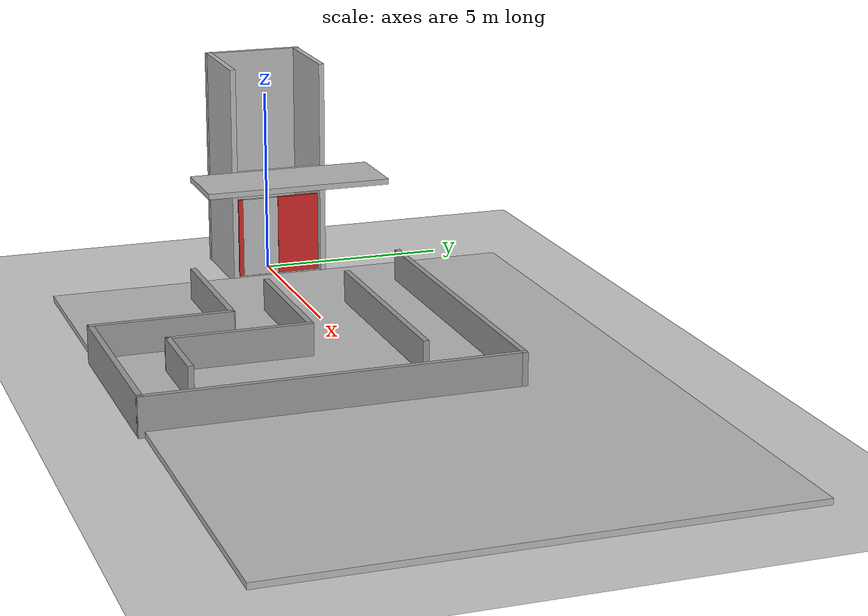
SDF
<sdf version="1.6">
 <world name="default">
  <light name="sun" type="directional">
   <pose>0 0 10 0 -0 0</pose>
   <diffuse>0.8 0.8 0.8 1</diffuse>
   <specular>0.2 0.2 0.2 1</specular>
   <attenuation>
    <range>1000</range>
    <constant>0.9</constant>
    <linear>0.01</linear>
    <quadratic>0.001</quadratic>
   </attenuation>
   <direction>-0.5 0.1 -0.9</direction>
  </light>
  <model name="ground_plane">
   <static>1</static>
   <link name="link">
    <collision name="collision">
     <geometry><plane><normal>0 0 1</normal><size>100 100</size></plane></geometry>
     <surface>
      <contact><collide_bitmask>65535</collide_bitmask></contact>
      <friction><ode><mu>100</mu><mu2>50</mu2></ode></friction>
     </surface>
    </collision>
    <visual name="visual">
     <cast_shadows>0</cast_shadows>
     <geometry><plane><normal>0 0 1</normal><size>100 100</size></plane></geometry>
     <material>
      <script><uri>file://media/materials/scripts/gazebo.material</uri><name>Gazebo/Grey</name></script>
     </material>
    </visual>
   </link>
  </model>
  <plugin name="elevator_event_plugin" filename="libSimEventsPlugin.so">
   <region><name>region1</name><volume><min>1.5 -1 0</min><max>2.5 1 1</max></volume></region>
   <region><name>region2</name><volume><min>1.5 -1 3</min><max>2.5 1 4</max></volume></region>
   <event>
    <name>region1_event</name>
    <type>occupied</type>
    <region>region1</region>
    <topic>~/elevator</topic>
    <msg_data>0</msg_data>
   </event>
   <event>
    <name>region2_event</name>
    <type>occupied</type>
    <region>region2</region>
    <topic>~/elevator</topic>
    <msg_data>1</msg_data>
   </event>
  </plugin>
  <model name="elevator">
   <pose>-0 0 0.075 -0 -0 -0</pose>
   <link name="link">
    <inertial>
     <mass>800</mass>
     <inertia><ixx>1</ixx><ixy>0</ixy><ixz>0</ixz><iyy>1</iyy><iyz>0</iyz><izz>1</izz></inertia>
    </inertial>
    <collision name="floor_collision"><geometry><box><size>2.25 2.25 0.15</size></box></geometry></collision>
    <visual name="floor_visual"><geometry><box><size>2.25 2.25 0.15</size></box></geometry></visual>
    <collision name="wall1_collision">
     <pose>1.0745 0.5725 1.125 0 -0 0</pose>
     <geometry><box><size>0.1 1.15 2.25</size></box></geometry>
    </collision>
    <visual name="wall1_visual">
     <pose>1.0745 0.5725 1.125 0 -0 0</pose>
     <geometry><box><size>0.1 1.15 2.25</size></box></geometry>
     <material><script><name>Gazebo/Red</name><uri>__default__</uri></script></material>
    </visual>
    <collision name="wall2_collision">
     <pose>1.0745 -1.0625 1.125 0 -0 0</pose>
     <geometry><box><size>0.1 0.125 2.25</size></box></geometry>
    </collision>
    <visual name="wall2_visual">
     <pose>1.0745 -1.0625 1.125 0 -0 0</pose>
     <geometry><box><size>0.1 0.125 2.25</size></box></geometry>
     <material><script><name>Gazebo/Red</name><uri>__default__</uri></script></material>
    </visual>
   </link>
   <link name="door">
    <pose>1.0745 -0.5 1.125 0 -0 0</pose>
    <collision name="collision"><geometry><box><size>0.08 1 2.25</size></box></geometry></collision>
    <visual name="visual"><geometry><box><size>0.08 1 2.25</size></box></geometry></visual>
    <inertial>
     <inertia><ixx>1</ixx><ixy>0</ixy><ixz>0</ixz><iyy>1</iyy><iyz>0</iyz><izz>1</izz></inertia>
     <mass>1</mass>
    </inertial>
   </link>
   <joint name="door" type="prismatic">
    <parent>link</parent>
    <child>door</child>
    <axis>
     <xyz>0 1 0</xyz>
     <limit><lower>0</lower><upper>1</upper><effort>10</effort></limit>
     <dynamics>
      <damping>2</damping>
      <spring_reference>0</spring_reference>
      <spring_stiffness>0</spring_stiffness>
     </dynamics>
     <use_parent_model_frame>0</use_parent_model_frame>
    </axis>
   </joint>
   <joint name="lift" type="prismatic">
    <parent>world</parent>
    <child>link</child>
    <axis>
     <xyz>0 0 1</xyz>
     <limit><lower>0</lower><upper>10</upper><effort>100000</effort></limit>
     <dynamics>
      <damping>50</damping>
      <spring_reference>0</spring_reference>
      <spring_stiffness>0</spring_stiffness>
     </dynamics>
     <use_parent_model_frame>0</use_parent_model_frame>
    </axis>
    <physics>
     <ode><implicit_spring_damper>1</implicit_spring_damper><limit><cfm>0</cfm><erp>0.2</erp></limit></ode>
    </physics>
   </joint>
   <plugin name="elevator_plugin" filename="libElevatorPlugin.so">
    <lift_joint>elevator::lift</lift_joint>
    <door_joint>elevator::door</door_joint>
    <floor_height>3.075</floor_height>
    <door_wait_time>10</door_wait_time>
    <topic>~/elevator</topic>
   </plugin>
  </model>
  <model name="elevator_shaft">
   <static>1</static>
   <link name="link">
    <collision name="shaft_wall1_collision">
     <pose>0 1.25 3 0 -0 0</pose>
     <geometry><box><size>2.5 0.15 6</size></box></geometry>
    </collision>
    <visual name="shaft_wall1_visual">
     <pose>0 1.25 3 0 -0 0</pose>
     <geometry><box><size>2.5 0.15 6</size></box></geometry>
    </visual>
    <collision name="shaft_wall2_collision">
     <pose>0 -1.25 3 0 -0 0</pose>
     <geometry><box><size>2.5 0.15 6</size></box></geometry>
    </collision>
    <visual name="shaft_wall2_visual">
     <pose>0 -1.25 3 0 -0 0</pose>
     <geometry><box><size>2.5 0.15 6</size></box></geometry>
    </visual>
    <collision name="shaft_wall3_collision">
     <pose>-1.25 0 3 0 -0 0</pose>
     <geometry><box><size>0.15 2.7 6</size></box></geometry>
    </collision>
    <visual name="shaft_wall3_visual">
     <pose>-1.25 0 3 0 -0 0</pose>
     <geometry><box><size>0.15 2.7 6</size></box></geometry>
    </visual>
    <collision name="floor0_collision">
     <pose>1.19 0 0.075 0 -0 0</pose>
     <geometry><box><size>0.12 2.5 0.15</size></box></geometry>
    </collision>
    <visual name="floor0_visual">
     <pose>1.19 0 0.075 0 -0 0</pose>
     <geometry><box><size>0.12 2.5 0.15</size></box></geometry>
    </visual>
    <collision name="floor1_collision">
     <pose>1.19 0 3.075 0 -0 0</pose>
     <geometry><box><size>0.12 2.5 0.15</size></box></geometry>
    </collision>
    <visual name="floor1_visual">
     <pose>1.19 0 3.075 0 -0 0</pose>
     <geometry><box><size>0.12 2.5 0.15</size></box></geometry>
    </visual>
   </link>
  </model>
  <model name="floor1">
   <pose>2.25 0 3.075 0 -0 0</pose>
   <static>1</static>
   <link name="link">
    <collision name="floor_collision"><geometry><box><size>2 5 0.15</size></box></geometry></collision>
    <visual name="floor_visual"><geometry><box><size>2 5 0.15</size></box></geometry></visual>
   </link>
  </model>
  <gravity>0 0 -9.8</gravity>
  <magnetic_field>6e-06 2.3e-05 -4.2e-05</magnetic_field>
  <atmosphere type="adiabatic"/>
  <physics name="default_physics" default="0" type="ode">
   <max_step_size>0.001</max_step_size>
   <real_time_factor>1</real_time_factor>
   <real_time_update_rate>1000</real_time_update_rate>
  </physics>
  <scene><ambient>0.4 0.4 0.4 1</ambient><background>0.7 0.7 0.7 1</background><shadows>1</shadows></scene>
  <spherical_coordinates>
   <surface_model>EARTH_WGS84</surface_model>
   <latitude_deg>0</latitude_deg>
   <longitude_deg>0</longitude_deg>
   <elevation>0</elevation>
   <heading_deg>0</heading_deg>
  </spherical_coordinates>
  <model name="Circuit_ql_2_deleted_three_walls">
   <link name="Wall_1">
    <pose>-2.675 -1.075 0 0 -0 0</pose>
    <visual name="Wall_1_Visual">
     <pose>0 0 0.5 0 -0 0</pose>
     <geometry><box><size>4 0.15 1</size></box></geometry>
     <material>
      <script><uri>file://media/materials/scripts/gazebo.material</uri><name>Gazebo/Grey</name></script>
      <ambient>1 1 1 1</ambient>
      <shader type="pixel"/>
     </material>
    </visual>
    <collision name="Wall_1_Collision">
     <pose>0 0 0.5 0 -0 0</pose>
     <geometry><box><size>4 0.15 1</size></box></geometry>
     <surface>
      <friction>
       <ode><mu>1</mu><mu2>1</mu2><fdir1>0 0 0</fdir1><slip1>0</slip1><slip2>0</slip2></ode>
       <torsional>
        <coefficient>1</coefficient>
        <patch_radius>0</patch_radius>
        <surface_radius>0</surface_radius>
        <use_patch_radius>1</use_patch_radius>
        <ode><slip>0</slip></ode>
       </torsional>
      </friction>
      <bounce><restitution_coefficient>0</restitution_coefficient><threshold>1e+06</threshold></bounce>
      <contact>
       <collide_without_contact>0</collide_without_contact>
       <collide_without_contact_bitmask>1</collide_without_contact_bitmask>
       <collide_bitmask>1</collide_bitmask>
       <ode>
        <soft_cfm>0</soft_cfm>
        <soft_erp>0.2</soft_erp>
        <kp>1e+13</kp>
        <kd>1</kd>
        <max_vel>0.01</max_vel>
        <min_depth>0</min_depth>
       </ode>
       <bullet>
        <split_impulse>1</split_impulse>
        <split_impulse_penetration_threshold>-0.01</split_impulse_penetration_threshold>
        <soft_cfm>0</soft_cfm>
        <soft_erp>0.2</soft_erp>
        <kp>1e+13</kp>
        <kd>1</kd>
       </bullet>
      </contact>
     </surface>
    </collision>
   </link>
   <link name="Wall_12">
    <pose>-1.111 0.509 0 0 -0 0</pose>
    <visual name="Wall_12_Visual">
     <pose>0 0 0.5 0 -0 0</pose>
     <geometry><box><size>4 0.15 1</size></box></geometry>
     <material>
      <script><uri>file://media/materials/scripts/gazebo.material</uri><name>Gazebo/Grey</name></script>
      <ambient>1 1 1 1</ambient>
      <shader type="pixel"/>
     </material>
    </visual>
    <collision name="Wall_12_Collision">
     <pose>0 0 0.5 0 -0 0</pose>
     <geometry><box><size>4 0.15 1</size></box></geometry>
     <surface>
      <friction>
       <ode><mu>1</mu><mu2>1</mu2><fdir1>0 0 0</fdir1><slip1>0</slip1><slip2>0</slip2></ode>
       <torsional>
        <coefficient>1</coefficient>
        <patch_radius>0</patch_radius>
        <surface_radius>0</surface_radius>
        <use_patch_radius>1</use_patch_radius>
        <ode><slip>0</slip></ode>
       </torsional>
      </friction>
      <bounce><restitution_coefficient>0</restitution_coefficient><threshold>1e+06</threshold></bounce>
      <contact>
       <collide_without_contact>0</collide_without_contact>
       <collide_without_contact_bitmask>1</collide_without_contact_bitmask>
       <collide_bitmask>1</collide_bitmask>
       <ode>
        <soft_cfm>0</soft_cfm>
        <soft_erp>0.2</soft_erp>
        <kp>1e+13</kp>
        <kd>1</kd>
        <max_vel>0.01</max_vel>
        <min_depth>0</min_depth>
       </ode>
       <bullet>
        <split_impulse>1</split_impulse>
        <split_impulse_penetration_threshold>-0.01</split_impulse_penetration_threshold>
        <soft_cfm>0</soft_cfm>
        <soft_erp>0.2</soft_erp>
        <kp>1e+13</kp>
        <kd>1</kd>
       </bullet>
      </contact>
     </surface>
    </collision>
   </link>
   <link name="Wall_13">
    <pose>0.814 -1.291 0 0 0 -1.5708</pose>
    <visual name="Wall_13_Visual">
     <pose>0 0 0.5 0 -0 0</pose>
     <geometry><box><size>3.75 0.15 1</size></box></geometry>
     <material>
      <script><uri>file://media/materials/scripts/gazebo.material</uri><name>Gazebo/Grey</name></script>
      <ambient>1 1 1 1</ambient>
      <shader type="pixel"/>
     </material>
    </visual>
    <collision name="Wall_13_Collision">
     <pose>0 0 0.5 0 -0 0</pose>
     <geometry><box><size>3.75 0.15 1</size></box></geometry>
     <surface>
      <friction>
       <ode><mu>1</mu><mu2>1</mu2><fdir1>0 0 0</fdir1><slip1>0</slip1><slip2>0</slip2></ode>
       <torsional>
        <coefficient>1</coefficient>
        <patch_radius>0</patch_radius>
        <surface_radius>0</surface_radius>
        <use_patch_radius>1</use_patch_radius>
        <ode><slip>0</slip></ode>
       </torsional>
      </friction>
      <bounce><restitution_coefficient>0</restitution_coefficient><threshold>1e+06</threshold></bounce>
      <contact>
       <collide_without_contact>0</collide_without_contact>
       <collide_without_contact_bitmask>1</collide_without_contact_bitmask>
       <collide_bitmask>1</collide_bitmask>
       <ode>
        <soft_cfm>0</soft_cfm>
        <soft_erp>0.2</soft_erp>
        <kp>1e+13</kp>
        <kd>1</kd>
        <max_vel>0.01</max_vel>
        <min_depth>0</min_depth>
       </ode>
       <bullet>
        <split_impulse>1</split_impulse>
        <split_impulse_penetration_threshold>-0.01</split_impulse_penetration_threshold>
        <soft_cfm>0</soft_cfm>
        <soft_erp>0.2</soft_erp>
        <kp>1e+13</kp>
        <kd>1</kd>
       </bullet>
      </contact>
     </surface>
    </collision>
   </link>
   <link name="Wall_14">
    <pose>1.9 -3.091 0 0 -0 0</pose>
    <visual name="Wall_14_Visual">
     <pose>0 0 0.5 0 -0 0</pose>
     <geometry><box><size>2.25 0.15 1</size></box></geometry>
     <material>
      <script><uri>file://media/materials/scripts/gazebo.material</uri><name>Gazebo/Grey</name></script>
      <ambient>1 1 1 1</ambient>
      <shader type="pixel"/>
     </material>
    </visual>
    <collision name="Wall_14_Collision">
     <pose>0 0 0.5 0 -0 0</pose>
     <geometry><box><size>2.25 0.15 1</size></box></geometry>
     <surface>
      <friction>
       <ode><mu>1</mu><mu2>1</mu2><fdir1>0 0 0</fdir1><slip1>0</slip1><slip2>0</slip2></ode>
       <torsional>
        <coefficient>1</coefficient>
        <patch_radius>0</patch_radius>
        <surface_radius>0</surface_radius>
        <use_patch_radius>1</use_patch_radius>
        <ode><slip>0</slip></ode>
       </torsional>
      </friction>
      <bounce><restitution_coefficient>0</restitution_coefficient><threshold>1e+06</threshold></bounce>
      <contact>
       <collide_without_contact>0</collide_without_contact>
       <collide_without_contact_bitmask>1</collide_without_contact_bitmask>
       <collide_bitmask>1</collide_bitmask>
       <ode>
        <soft_cfm>0</soft_cfm>
        <soft_erp>0.2</soft_erp>
        <kp>1e+13</kp>
        <kd>1</kd>
        <max_vel>0.01</max_vel>
        <min_depth>0</min_depth>
       </ode>
       <bullet>
        <split_impulse>1</split_impulse>
        <split_impulse_penetration_threshold>-0.01</split_impulse_penetration_threshold>
        <soft_cfm>0</soft_cfm>
        <soft_erp>0.2</soft_erp>
        <kp>1e+13</kp>
        <kd>1</kd>
       </bullet>
      </contact>
     </surface>
    </collision>
   </link>
   <link name="Wall_16">
    <pose>-0.02 2.744 0 0 -0 3.14159</pose>
    <visual name="Wall_16_Visual">
     <pose>0 0 0.5 0 -0 0</pose>
     <geometry><box><size>6.2 0.15 1</size></box></geometry>
     <material>
      <script><uri>file://media/materials/scripts/gazebo.material</uri><name>Gazebo/Grey</name></script>
      <ambient>1 1 1 1</ambient>
      <shader type="pixel"/>
     </material>
    </visual>
    <collision name="Wall_16_Collision">
     <pose>0 0 0.5 0 -0 0</pose>
     <geometry><box><size>6.2 0.15 1</size></box></geometry>
     <surface>
      <friction>
       <ode><mu>1</mu><mu2>1</mu2><fdir1>0 0 0</fdir1><slip1>0</slip1><slip2>0</slip2></ode>
       <torsional>
        <coefficient>1</coefficient>
        <patch_radius>0</patch_radius>
        <surface_radius>0</surface_radius>
        <use_patch_radius>1</use_patch_radius>
        <ode><slip>0</slip></ode>
       </torsional>
      </friction>
      <bounce><restitution_coefficient>0</restitution_coefficient><threshold>1e+06</threshold></bounce>
      <contact>
       <collide_without_contact>0</collide_without_contact>
       <collide_without_contact_bitmask>1</collide_without_contact_bitmask>
       <collide_bitmask>1</collide_bitmask>
       <ode>
        <soft_cfm>0</soft_cfm>
        <soft_erp>0.2</soft_erp>
        <kp>1e+13</kp>
        <kd>1</kd>
        <max_vel>0.01</max_vel>
        <min_depth>0</min_depth>
       </ode>
       <bullet>
        <split_impulse>1</split_impulse>
        <split_impulse_penetration_threshold>-0.01</split_impulse_penetration_threshold>
        <soft_cfm>0</soft_cfm>
        <soft_erp>0.2</soft_erp>
        <kp>1e+13</kp>
        <kd>1</kd>
       </bullet>
      </contact>
     </surface>
    </collision>
   </link>
   <link name="Wall_2">
    <pose>-0.75 -2.875 0 0 0 -1.5708</pose>
    <visual name="Wall_2_Visual">
     <pose>0 0 0.5 0 -0 0</pose>
     <geometry><box><size>3.7 0.15 1</size></box></geometry>
     <material>
      <script><uri>file://media/materials/scripts/gazebo.material</uri><name>Gazebo/Grey</name></script>
      <ambient>1 1 1 1</ambient>
      <shader type="pixel"/>
     </material>
    </visual>
    <collision name="Wall_2_Collision">
     <pose>0 0 0.5 0 -0 0</pose>
     <geometry><box><size>3.7 0.15 1</size></box></geometry>
     <surface>
      <friction>
       <ode><mu>1</mu><mu2>1</mu2><fdir1>0 0 0</fdir1><slip1>0</slip1><slip2>0</slip2></ode>
       <torsional>
        <coefficient>1</coefficient>
        <patch_radius>0</patch_radius>
        <surface_radius>0</surface_radius>
        <use_patch_radius>1</use_patch_radius>
        <ode><slip>0</slip></ode>
       </torsional>
      </friction>
      <bounce><restitution_coefficient>0</restitution_coefficient><threshold>1e+06</threshold></bounce>
      <contact>
       <collide_without_contact>0</collide_without_contact>
       <collide_without_contact_bitmask>1</collide_without_contact_bitmask>
       <collide_bitmask>1</collide_bitmask>
       <ode>
        <soft_cfm>0</soft_cfm>
        <soft_erp>0.2</soft_erp>
        <kp>1e+13</kp>
        <kd>1</kd>
        <max_vel>0.01</max_vel>
        <min_depth>0</min_depth>
       </ode>
       <bullet>
        <split_impulse>1</split_impulse>
        <split_impulse_penetration_threshold>-0.01</split_impulse_penetration_threshold>
        <soft_cfm>0</soft_cfm>
        <soft_erp>0.2</soft_erp>
        <kp>1e+13</kp>
        <kd>1</kd>
       </bullet>
      </contact>
     </surface>
    </collision>
   </link>
   <link name="Wall_3">
    <pose>1.925 -4.675 0 0 -0 0</pose>
    <visual name="Wall_3_Visual">
     <pose>0 0 0.5 0 -0 0</pose>
     <geometry><box><size>5.5 0.15 1</size></box></geometry>
     <material>
      <script><uri>file://media/materials/scripts/gazebo.material</uri><name>Gazebo/Grey</name></script>
      <ambient>1 1 1 1</ambient>
      <shader type="pixel"/>
     </material>
    </visual>
    <collision name="Wall_3_Collision">
     <pose>0 0 0.5 0 -0 0</pose>
     <geometry><box><size>5.5 0.15 1</size></box></geometry>
     <surface>
      <friction>
       <ode><mu>1</mu><mu2>1</mu2><fdir1>0 0 0</fdir1><slip1>0</slip1><slip2>0</slip2></ode>
       <torsional>
        <coefficient>1</coefficient>
        <patch_radius>0</patch_radius>
        <surface_radius>0</surface_radius>
        <use_patch_radius>1</use_patch_radius>
        <ode><slip>0</slip></ode>
       </torsional>
      </friction>
      <bounce><restitution_coefficient>0</restitution_coefficient><threshold>1e+06</threshold></bounce>
      <contact>
       <collide_without_contact>0</collide_without_contact>
       <collide_without_contact_bitmask>1</collide_without_contact_bitmask>
       <collide_bitmask>1</collide_bitmask>
       <ode>
        <soft_cfm>0</soft_cfm>
        <soft_erp>0.2</soft_erp>
        <kp>1e+13</kp>
        <kd>1</kd>
        <max_vel>0.01</max_vel>
        <min_depth>0</min_depth>
       </ode>
       <bullet>
        <split_impulse>1</split_impulse>
        <split_impulse_penetration_threshold>-0.01</split_impulse_penetration_threshold>
        <soft_cfm>0</soft_cfm>
        <soft_erp>0.2</soft_erp>
        <kp>1e+13</kp>
        <kd>1</kd>
       </bullet>
      </contact>
     </surface>
    </collision>
   </link>
   <link name="Wall_7">
    <pose>4.6 0 0 0 -0 1.5708</pose>
    <visual name="Wall_7_Visual">
     <pose>0 0 0.5 0 -0 0</pose>
     <geometry><box><size>9.5 0.15 1</size></box></geometry>
     <material>
      <script><uri>file://media/materials/scripts/gazebo.material</uri><name>Gazebo/Grey</name></script>
      <ambient>1 1 1 1</ambient>
      <shader type="pixel"/>
     </material>
    </visual>
    <collision name="Wall_7_Collision">
     <pose>0 0 0.5 0 -0 0</pose>
     <geometry><box><size>9.5 0.15 1</size></box></geometry>
     <surface>
      <friction>
       <ode><mu>1</mu><mu2>1</mu2><fdir1>0 0 0</fdir1><slip1>0</slip1><slip2>0</slip2></ode>
       <torsional>
        <coefficient>1</coefficient>
        <patch_radius>0</patch_radius>
        <surface_radius>0</surface_radius>
        <use_patch_radius>1</use_patch_radius>
        <ode><slip>0</slip></ode>
       </torsional>
      </friction>
      <bounce><restitution_coefficient>0</restitution_coefficient><threshold>1e+06</threshold></bounce>
      <contact>
       <collide_without_contact>0</collide_without_contact>
       <collide_without_contact_bitmask>1</collide_without_contact_bitmask>
       <collide_bitmask>1</collide_bitmask>
       <ode>
        <soft_cfm>0</soft_cfm>
        <soft_erp>0.2</soft_erp>
        <kp>1e+13</kp>
        <kd>1</kd>
        <max_vel>0.01</max_vel>
        <min_depth>0</min_depth>
       </ode>
       <bullet>
        <split_impulse>1</split_impulse>
        <split_impulse_penetration_threshold>-0.01</split_impulse_penetration_threshold>
        <soft_cfm>0</soft_cfm>
        <soft_erp>0.2</soft_erp>
        <kp>1e+13</kp>
        <kd>1</kd>
       </bullet>
      </contact>
     </surface>
    </collision>
   </link>
   <link name="Wall_9">
    <pose>0.05 4.675 0 0 -0 3.14159</pose>
    <visual name="Wall_9_Visual">
     <pose>0 0 0.5 0 -0 0</pose>
     <geometry><box><size>9.25 0.15 1</size></box></geometry>
     <material>
      <script><uri>file://media/materials/scripts/gazebo.material</uri><name>Gazebo/Grey</name></script>
      <ambient>1 1 1 1</ambient>
      <shader type="pixel"/>
     </material>
    </visual>
    <collision name="Wall_9_Collision">
     <pose>0 0 0.5 0 -0 0</pose>
     <geometry><box><size>9.25 0.15 1</size></box></geometry>
     <surface>
      <friction>
       <ode><mu>1</mu><mu2>1</mu2><fdir1>0 0 0</fdir1><slip1>0</slip1><slip2>0</slip2></ode>
       <torsional>
        <coefficient>1</coefficient>
        <patch_radius>0</patch_radius>
        <surface_radius>0</surface_radius>
        <use_patch_radius>1</use_patch_radius>
        <ode><slip>0</slip></ode>
       </torsional>
      </friction>
      <bounce><restitution_coefficient>0</restitution_coefficient><threshold>1e+06</threshold></bounce>
      <contact>
       <collide_without_contact>0</collide_without_contact>
       <collide_without_contact_bitmask>1</collide_without_contact_bitmask>
       <collide_bitmask>1</collide_bitmask>
       <ode>
        <soft_cfm>0</soft_cfm>
        <soft_erp>0.2</soft_erp>
        <kp>1e+13</kp>
        <kd>1</kd>
        <max_vel>0.01</max_vel>
        <min_depth>0</min_depth>
       </ode>
       <bullet>
        <split_impulse>1</split_impulse>
        <split_impulse_penetration_threshold>-0.01</split_impulse_penetration_threshold>
        <soft_cfm>0</soft_cfm>
        <soft_erp>0.2</soft_erp>
        <kp>1e+13</kp>
        <kd>1</kd>
       </bullet>
      </contact>
     </surface>
    </collision>
   </link>
   <static>1</static>
   <pose>7.37573 -1.7691 0 0 -0 0</pose>
  </model>
  <model name="floor_large">
   <link name="link">
    <inertial>
     <inertia><ixx>0</ixx><ixy>0</ixy><ixz>0</ixz><iyy>0</iyy><iyz>0</iyz><izz>0</izz></inertia>
     <mass>0</mass>
    </inertial>
    <visual name="floor_visual">
     <geometry><box><size>19.3504 12.7281 0.15</size></box></geometry>
     <material><shader type="pixel"/></material>
    </visual>
    <collision name="floor_collision">
     <geometry><box><size>19.3504 12.7281 0.15</size></box></geometry>
     <surface>
      <friction>
       <ode><mu>1</mu><mu2>1</mu2><fdir1>0 0 0</fdir1><slip1>0</slip1><slip2>0</slip2></ode>
       <torsional>
        <coefficient>1</coefficient>
        <patch_radius>0</patch_radius>
        <surface_radius>0</surface_radius>
        <use_patch_radius>1</use_patch_radius>
        <ode><slip>0</slip></ode>
       </torsional>
      </friction>
      <bounce><restitution_coefficient>0</restitution_coefficient><threshold>1e+06</threshold></bounce>
      <contact>
       <collide_without_contact>0</collide_without_contact>
       <collide_without_contact_bitmask>1</collide_without_contact_bitmask>
       <collide_bitmask>1</collide_bitmask>
       <ode>
        <soft_cfm>0</soft_cfm>
        <soft_erp>0.2</soft_erp>
        <kp>1e+13</kp>
        <kd>1</kd>
        <max_vel>0.01</max_vel>
        <min_depth>0</min_depth>
       </ode>
       <bullet>
        <split_impulse>1</split_impulse>
        <split_impulse_penetration_threshold>-0.01</split_impulse_penetration_threshold>
        <soft_cfm>0</soft_cfm>
        <soft_erp>0.2</soft_erp>
        <kp>1e+13</kp>
        <kd>1</kd>
       </bullet>
      </contact>
     </surface>
    </collision>
   </link>
   <static>1</static>
   <pose>10.907 0 0.075 0 -0 0</pose>
  </model>
 </world>
</sdf>
